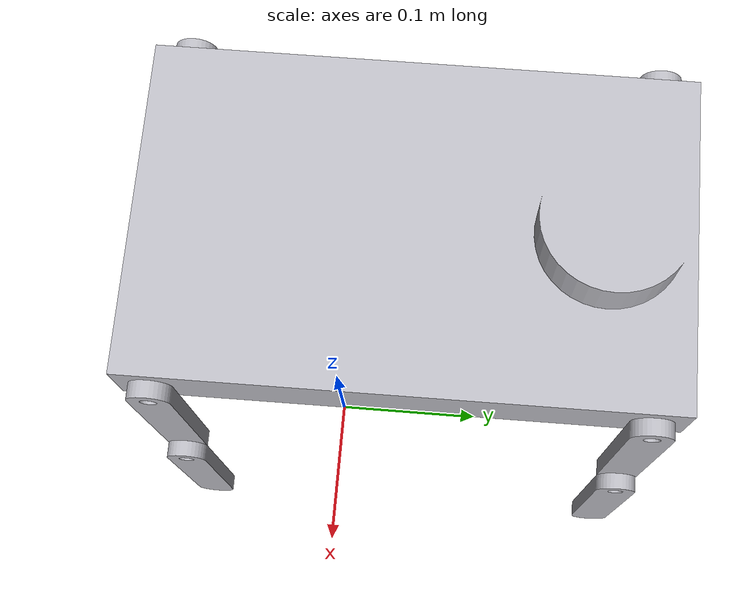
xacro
<?xml version="1.0" ?>
<robot name="assembly" xmlns:xacro="http://www.ros.org/wiki/xacro">

<xacro:include filename="$(find assembly_description)/urdf/materials.xacro" />
<xacro:include filename="$(find assembly_description)/urdf/assembly.trans" />
<xacro:include filename="$(find assembly_description)/urdf/assembly.gazebo" />
<link name="base_link">
  <inertial>
    <origin xyz="-0.049899943844531676 0.057556869263274094 0.2572802037178901" rpy="0 0 0"/>
    <mass value="20.441261032629512"/>
    <inertia ixx="0.17207" iyy="0.068578" izz="0.232088" ixy="0.0" iyz="-0.004793" ixz="0.0"/>
  </inertial>
  <visual>
    <origin xyz="0 0 0" rpy="0 0 0"/>
    <geometry>
      <mesh filename="package://assembly_description/meshes/base_link.stl" scale="0.001 0.001 0.001"/>
    </geometry>
    <material name="silver"/>
  </visual>
  <collision>
    <origin xyz="0 0 0" rpy="0 0 0"/>
    <geometry>
      <mesh filename="package://assembly_description/meshes/base_link.stl" scale="0.001 0.001 0.001"/>
    </geometry>
  </collision>
</link>

<link name="upper_leg__right_back_1">
  <inertial>
    <origin xyz="0.005000056155468294 -0.044194659102811396 -0.04419417382414284" rpy="0 0 0"/>
    <mass value="0.27151534622634843"/>
    <inertia ixx="0.000463" iyy="0.000234" izz="0.000234" ixy="0.0" iyz="-0.000217" ixz="0.0"/>
  </inertial>
  <visual>
    <origin xyz="-0.0501 0.089609 -0.255" rpy="0 0 0"/>
    <geometry>
      <mesh filename="package://assembly_description/meshes/upper_leg__right_back_1.stl" scale="0.001 0.001 0.001"/>
    </geometry>
    <material name="silver"/>
  </visual>
  <collision>
    <origin xyz="-0.0501 0.089609 -0.255" rpy="0 0 0"/>
    <geometry>
      <mesh filename="package://assembly_description/meshes/upper_leg__right_back_1.stl" scale="0.001 0.001 0.001"/>
    </geometry>
  </collision>
</link>

<link name="upper_leg_right_front_1">
  <inertial>
    <origin xyz="0.005000056155468335 -0.04419465910284545 -0.04419417382417698" rpy="0 0 0"/>
    <mass value="0.27151534622634843"/>
    <inertia ixx="0.000463" iyy="0.000234" izz="0.000234" ixy="0.0" iyz="-0.000217" ixz="0.0"/>
  </inertial>
  <visual>
    <origin xyz="-0.0501 -0.190391 -0.255" rpy="0 0 0"/>
    <geometry>
      <mesh filename="package://assembly_description/meshes/upper_leg_right_front_1.stl" scale="0.001 0.001 0.001"/>
    </geometry>
    <material name="silver"/>
  </visual>
  <collision>
    <origin xyz="-0.0501 -0.190391 -0.255" rpy="0 0 0"/>
    <geometry>
      <mesh filename="package://assembly_description/meshes/upper_leg_right_front_1.stl" scale="0.001 0.001 0.001"/>
    </geometry>
  </collision>
</link>

<link name="lower_right_front_1">
  <inertial>
    <origin xyz="0.005000056155468349 0.03662596669271194 -0.052344199737918734" rpy="0 0 0"/>
    <mass value="0.27816688681604296"/>
    <inertia ixx="0.000488" iyy="0.000325" izz="0.000168" ixy="-0.0" iyz="0.000216" ixz="0.0"/>
  </inertial>
  <visual>
    <origin xyz="-0.0601 -0.102002 -0.166612" rpy="0 0 0"/>
    <geometry>
      <mesh filename="package://assembly_description/meshes/lower_right_front_1.stl" scale="0.001 0.001 0.001"/>
    </geometry>
    <material name="silver"/>
  </visual>
  <collision>
    <origin xyz="-0.0601 -0.102002 -0.166612" rpy="0 0 0"/>
    <geometry>
      <mesh filename="package://assembly_description/meshes/lower_right_front_1.stl" scale="0.001 0.001 0.001"/>
    </geometry>
  </collision>
</link>

<link name="upper_leg_left_front_1_1">
  <inertial>
    <origin xyz="-0.004999943844531757 -0.044194659102845396 -0.04419417382417709" rpy="0 0 0"/>
    <mass value="0.27151534622634843"/>
    <inertia ixx="0.000463" iyy="0.000234" izz="0.000234" ixy="0.0" iyz="-0.000217" ixz="0.0"/>
  </inertial>
  <visual>
    <origin xyz="0.1499 -0.190391 -0.255" rpy="0 0 0"/>
    <geometry>
      <mesh filename="package://assembly_description/meshes/upper_leg_left_front_1_1.stl" scale="0.001 0.001 0.001"/>
    </geometry>
    <material name="silver"/>
  </visual>
  <collision>
    <origin xyz="0.1499 -0.190391 -0.255" rpy="0 0 0"/>
    <geometry>
      <mesh filename="package://assembly_description/meshes/upper_leg_left_front_1_1.stl" scale="0.001 0.001 0.001"/>
    </geometry>
  </collision>
</link>

<link name="lower_left_front_1">
  <inertial>
    <origin xyz="-0.004999943844531812 0.03662596669271169 -0.052344199737918484" rpy="0 0 0"/>
    <mass value="0.278166886816043"/>
    <inertia ixx="0.000488" iyy="0.000325" izz="0.000168" ixy="0.0" iyz="0.000216" ixz="-0.0"/>
  </inertial>
  <visual>
    <origin xyz="0.1599 -0.102002 -0.166612" rpy="0 0 0"/>
    <geometry>
      <mesh filename="package://assembly_description/meshes/lower_left_front_1.stl" scale="0.001 0.001 0.001"/>
    </geometry>
    <material name="silver"/>
  </visual>
  <collision>
    <origin xyz="0.1599 -0.102002 -0.166612" rpy="0 0 0"/>
    <geometry>
      <mesh filename="package://assembly_description/meshes/lower_left_front_1.stl" scale="0.001 0.001 0.001"/>
    </geometry>
  </collision>
</link>

<link name="upper_leg_left_back_1">
  <inertial>
    <origin xyz="-0.0049999438445317845 -0.04419465910284537 -0.04419417382417709" rpy="0 0 0"/>
    <mass value="0.27151534622634843"/>
    <inertia ixx="0.000463" iyy="0.000234" izz="0.000234" ixy="0.0" iyz="-0.000217" ixz="0.0"/>
  </inertial>
  <visual>
    <origin xyz="0.1499 0.089609 -0.255" rpy="0 0 0"/>
    <geometry>
      <mesh filename="package://assembly_description/meshes/upper_leg_left_back_1.stl" scale="0.001 0.001 0.001"/>
    </geometry>
    <material name="silver"/>
  </visual>
  <collision>
    <origin xyz="0.1499 0.089609 -0.255" rpy="0 0 0"/>
    <geometry>
      <mesh filename="package://assembly_description/meshes/upper_leg_left_back_1.stl" scale="0.001 0.001 0.001"/>
    </geometry>
  </collision>
</link>

<link name="lower_leg_back_1">
  <inertial>
    <origin xyz="-0.004999943844531812 0.036625966692712064 -0.05234419973791869" rpy="0 0 0"/>
    <mass value="0.27816688681604373"/>
    <inertia ixx="0.000488" iyy="0.000325" izz="0.000168" ixy="-0.0" iyz="0.000216" ixz="0.0"/>
  </inertial>
  <visual>
    <origin xyz="0.1599 0.177998 -0.166612" rpy="0 0 0"/>
    <geometry>
      <mesh filename="package://assembly_description/meshes/lower_leg_back_1.stl" scale="0.001 0.001 0.001"/>
    </geometry>
    <material name="silver"/>
  </visual>
  <collision>
    <origin xyz="0.1599 0.177998 -0.166612" rpy="0 0 0"/>
    <geometry>
      <mesh filename="package://assembly_description/meshes/lower_leg_back_1.stl" scale="0.001 0.001 0.001"/>
    </geometry>
  </collision>
</link>

<link name="lower_right_back_1">
  <inertial>
    <origin xyz="0.005000056155468294 0.03666053738977171 -0.05231999307523612" rpy="0 0 0"/>
    <mass value="0.2781668868160432"/>
    <inertia ixx="0.000488" iyy="0.000325" izz="0.000168" ixy="0.0" iyz="0.000216" ixz="0.0"/>
  </inertial>
  <visual>
    <origin xyz="-0.0601 0.177998 -0.166612" rpy="0 0 0"/>
    <geometry>
      <mesh filename="package://assembly_description/meshes/lower_right_back_1.stl" scale="0.001 0.001 0.001"/>
    </geometry>
    <material name="silver"/>
  </visual>
  <collision>
    <origin xyz="-0.0601 0.177998 -0.166612" rpy="0 0 0"/>
    <geometry>
      <mesh filename="package://assembly_description/meshes/lower_right_back_1.stl" scale="0.001 0.001 0.001"/>
    </geometry>
  </collision>
</link>

<joint name="Rev15" type="continuous">
  <origin xyz="0.0501 -0.089609 0.255" rpy="0 0 0"/>
  <parent link="base_link"/>
  <child link="upper_leg__right_back_1"/>
  <axis xyz="-1.0 0.0 -0.0"/>
</joint>

<joint name="Rev16" type="continuous">
  <origin xyz="0.0501 0.190391 0.255" rpy="0 0 0"/>
  <parent link="base_link"/>
  <child link="upper_leg_right_front_1"/>
  <axis xyz="-1.0 0.0 -0.0"/>
</joint>

<joint name="Rev17" type="continuous">
  <origin xyz="0.01 -0.088389 -0.088388" rpy="0 0 0"/>
  <parent link="upper_leg_right_front_1"/>
  <child link="lower_right_front_1"/>
  <axis xyz="-1.0 0.0 -0.0"/>
</joint>

<joint name="Rev18" type="continuous">
  <origin xyz="-0.1499 0.190391 0.255" rpy="0 0 0"/>
  <parent link="base_link"/>
  <child link="upper_leg_left_front_1_1"/>
  <axis xyz="1.0 -0.0 0.0"/>
</joint>

<joint name="Rev19" type="continuous">
  <origin xyz="-0.01 -0.088389 -0.088388" rpy="0 0 0"/>
  <parent link="upper_leg_left_front_1_1"/>
  <child link="lower_left_front_1"/>
  <axis xyz="1.0 -0.0 -0.0"/>
</joint>

<joint name="Rev20" type="continuous">
  <origin xyz="-0.1499 -0.089609 0.255" rpy="0 0 0"/>
  <parent link="base_link"/>
  <child link="upper_leg_left_back_1"/>
  <axis xyz="1.0 -0.0 0.0"/>
</joint>

<joint name="Rev21" type="continuous">
  <origin xyz="-0.01 -0.088389 -0.088388" rpy="0 0 0"/>
  <parent link="upper_leg_left_back_1"/>
  <child link="lower_leg_back_1"/>
  <axis xyz="1.0 -0.0 0.0"/>
</joint>

<joint name="Rev22" type="continuous">
  <origin xyz="0.01 -0.088389 -0.088388" rpy="0 0 0"/>
  <parent link="upper_leg__right_back_1"/>
  <child link="lower_right_back_1"/>
  <axis xyz="-1.0 0.0 -0.0"/>
</joint>

</robot>

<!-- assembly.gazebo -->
<robot name="assembly" xmlns:xacro="http://www.ros.org/wiki/xacro" >

<xacro:property name="body_color" value="Gazebo/Silver" />

<gazebo>
  <plugin name="control" filename="libgazebo_ros_control.so"/>
</gazebo>
<gazebo reference="base_link">
  <material>${body_color}</material>
  <mu1>0.2</mu1>
  <mu2>0.2</mu2>
  <selfCollide>true</selfCollide>
  <gravity>true</gravity>
</gazebo>

<gazebo reference="upper_leg__right_back_1">
  <material>${body_color}</material>
  <mu1>0.2</mu1>
  <mu2>0.2</mu2>
  <selfCollide>true</selfCollide>
</gazebo>

<gazebo reference="upper_leg_right_front_1">
  <material>${body_color}</material>
  <mu1>0.2</mu1>
  <mu2>0.2</mu2>
  <selfCollide>true</selfCollide>
</gazebo>

<gazebo reference="lower_right_front_1">
  <material>${body_color}</material>
  <mu1>0.2</mu1>
  <mu2>0.2</mu2>
  <selfCollide>true</selfCollide>
</gazebo>

<gazebo reference="upper_leg_left_front_1_1">
  <material>${body_color}</material>
  <mu1>0.2</mu1>
  <mu2>0.2</mu2>
  <selfCollide>true</selfCollide>
</gazebo>

<gazebo reference="lower_left_front_1">
  <material>${body_color}</material>
  <mu1>0.2</mu1>
  <mu2>0.2</mu2>
  <selfCollide>true</selfCollide>
</gazebo>

<gazebo reference="upper_leg_left_back_1">
  <material>${body_color}</material>
  <mu1>0.2</mu1>
  <mu2>0.2</mu2>
  <selfCollide>true</selfCollide>
</gazebo>

<gazebo reference="lower_leg_back_1">
  <material>${body_color}</material>
  <mu1>0.2</mu1>
  <mu2>0.2</mu2>
  <selfCollide>true</selfCollide>
</gazebo>

<gazebo reference="lower_right_back_1">
  <material>${body_color}</material>
  <mu1>0.2</mu1>
  <mu2>0.2</mu2>
  <selfCollide>true</selfCollide>
</gazebo>

</robot>
